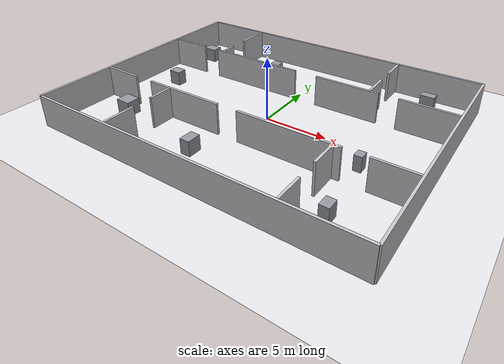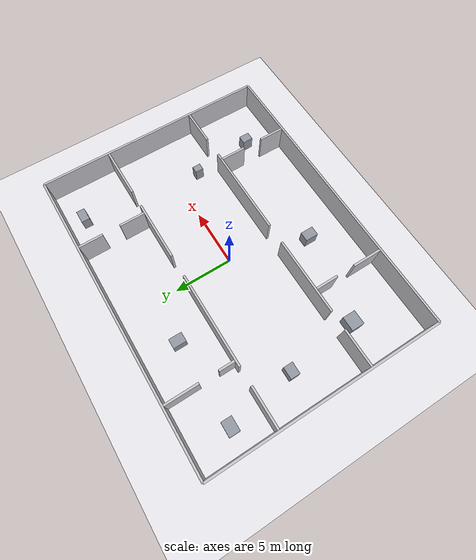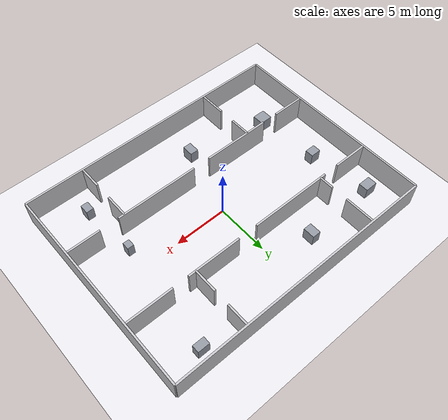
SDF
<?xml version="1.0"?>
<sdf version="1.9"><world name="new_room_world">
<plugin filename="gz-sim-physics-system" name="gz::sim::systems::Physics"/><plugin filename="gz-sim-user-commands-system" name="gz::sim::systems::UserCommands"/><plugin filename="gz-sim-scene-broadcaster-system" name="gz::sim::systems::SceneBroadcaster"/><plugin filename="gz-sim-sensors-system" name="gz::sim::systems::Sensors"><render_engine>ogre2</render_engine></plugin><plugin filename="gz-sim-imu-system" name="gz::sim::systems::Imu"/>
<physics name="new_room_realtime" type="ignored"><max_step_size>0.001</max_step_size><real_time_factor>1</real_time_factor></physics><gravity>0 0 -9.8</gravity><scene><ambient>0.85 0.85 0.87 1</ambient><background>0.68 0.68 0.71 1</background><shadows>false</shadows></scene><light name="sun" type="directional"><cast_shadows>false</cast_shadows><pose>0 0 10 0 0 0</pose><diffuse>0.95 0.95 0.95 1</diffuse><direction>-0.3 0.2 -1</direction></light>
<model name="new_room_ground"><static>true</static><link name="ground_link"><collision name="ground_collision"><geometry><plane><normal>0 0 1</normal><size>40 32</size></plane></geometry></collision><visual name="ground_visual"><geometry><plane><normal>0 0 1</normal><size>40 32</size></plane></geometry><material><ambient>0.92 0.92 0.94 1</ambient><diffuse>0.92 0.92 0.94 1</diffuse></material></visual></link></model>
<model name="mini_hospital_structure"><static>true</static><link name="structure">
<collision name="mx048_c000"><pose>0 10 1.25 0 0 0</pose><geometry><box><size>26 0.18 2.5</size></box></geometry></collision><visual name="mx048_v000"><pose>0 10 1.25 0 0 0</pose><geometry><box><size>26 0.18 2.5</size></box></geometry><material><ambient>0.78 0.78 0.80 1</ambient><diffuse>0.78 0.78 0.80 1</diffuse></material></visual>
<collision name="mx048_c001"><pose>0 -10 1.25 0 0 0</pose><geometry><box><size>26 0.18 2.5</size></box></geometry></collision><visual name="mx048_v001"><pose>0 -10 1.25 0 0 0</pose><geometry><box><size>26 0.18 2.5</size></box></geometry><material><ambient>0.78 0.78 0.80 1</ambient><diffuse>0.78 0.78 0.80 1</diffuse></material></visual>
<collision name="mx048_c002"><pose>-13 0 1.25 0 0 0</pose><geometry><box><size>0.18 20 2.5</size></box></geometry></collision><visual name="mx048_v002"><pose>-13 0 1.25 0 0 0</pose><geometry><box><size>0.18 20 2.5</size></box></geometry><material><ambient>0.78 0.78 0.80 1</ambient><diffuse>0.78 0.78 0.80 1</diffuse></material></visual>
<collision name="mx048_c003"><pose>13 0 1.25 0 0 0</pose><geometry><box><size>0.18 20 2.5</size></box></geometry></collision><visual name="mx048_v003"><pose>13 0 1.25 0 0 0</pose><geometry><box><size>0.18 20 2.5</size></box></geometry><material><ambient>0.78 0.78 0.80 1</ambient><diffuse>0.78 0.78 0.80 1</diffuse></material></visual>
<collision name="mx048_c004"><pose>-11.23 4.1 1.25 0 0 0</pose><geometry><box><size>3.36 0.18 2.5</size></box></geometry></collision><visual name="mx048_v004"><pose>-11.23 4.1 1.25 0 0 0</pose><geometry><box><size>3.36 0.18 2.5</size></box></geometry><material><ambient>0.78 0.78 0.80 1</ambient><diffuse>0.78 0.78 0.80 1</diffuse></material></visual>
<collision name="mx048_c005"><pose>-4.05 4.1 1.25 0 0 0</pose><geometry><box><size>8 0.18 2.5</size></box></geometry></collision><visual name="mx048_v005"><pose>-4.05 4.1 1.25 0 0 0</pose><geometry><box><size>8 0.18 2.5</size></box></geometry><material><ambient>0.78 0.78 0.80 1</ambient><diffuse>0.78 0.78 0.80 1</diffuse></material></visual>
<collision name="mx048_c006"><pose>4.45 4.1 1.25 0 0 0</pose><geometry><box><size>5.2 0.18 2.5</size></box></geometry></collision><visual name="mx048_v006"><pose>4.45 4.1 1.25 0 0 0</pose><geometry><box><size>5.2 0.18 2.5</size></box></geometry><material><ambient>0.78 0.78 0.80 1</ambient><diffuse>0.78 0.78 0.80 1</diffuse></material></visual>
<collision name="mx048_c007"><pose>10.73 4.1 1.25 0 0 0</pose><geometry><box><size>4.36 0.18 2.5</size></box></geometry></collision><visual name="mx048_v007"><pose>10.73 4.1 1.25 0 0 0</pose><geometry><box><size>4.36 0.18 2.5</size></box></geometry><material><ambient>0.78 0.78 0.80 1</ambient><diffuse>0.78 0.78 0.80 1</diffuse></material></visual>
<collision name="mx048_c008"><pose>-11.355 -3.8 1.25 0 0 0</pose><geometry><box><size>3.11 0.18 2.5</size></box></geometry></collision><visual name="mx048_v008"><pose>-11.355 -3.8 1.25 0 0 0</pose><geometry><box><size>3.11 0.18 2.5</size></box></geometry><material><ambient>0.78 0.78 0.80 1</ambient><diffuse>0.78 0.78 0.80 1</diffuse></material></visual>
<collision name="mx048_c009"><pose>-4.925 -3.8 1.25 0 0 0</pose><geometry><box><size>6.55 0.18 2.5</size></box></geometry></collision><visual name="mx048_v009"><pose>-4.925 -3.8 1.25 0 0 0</pose><geometry><box><size>6.55 0.18 2.5</size></box></geometry><material><ambient>0.78 0.78 0.80 1</ambient><diffuse>0.78 0.78 0.80 1</diffuse></material></visual>
<collision name="mx048_c010"><pose>4.025 -3.8 1.25 0 0 0</pose><geometry><box><size>7.95 0.18 2.5</size></box></geometry></collision><visual name="mx048_v010"><pose>4.025 -3.8 1.25 0 0 0</pose><geometry><box><size>7.95 0.18 2.5</size></box></geometry><material><ambient>0.78 0.78 0.80 1</ambient><diffuse>0.78 0.78 0.80 1</diffuse></material></visual>
<collision name="mx048_c011"><pose>11.355 -3.8 1.25 0 0 0</pose><geometry><box><size>3.11 0.18 2.5</size></box></geometry></collision><visual name="mx048_v011"><pose>11.355 -3.8 1.25 0 0 0</pose><geometry><box><size>3.11 0.18 2.5</size></box></geometry><material><ambient>0.78 0.78 0.80 1</ambient><diffuse>0.78 0.78 0.80 1</diffuse></material></visual>
<collision name="mx048_c012"><pose>-7.5 4.8 1.25 0 0 0</pose><geometry><box><size>0.18 1.4 2.5</size></box></geometry></collision><visual name="mx048_v012"><pose>-7.5 4.8 1.25 0 0 0</pose><geometry><box><size>0.18 1.4 2.5</size></box></geometry><material><ambient>0.78 0.78 0.80 1</ambient><diffuse>0.78 0.78 0.80 1</diffuse></material></visual>
<collision name="mx048_c013"><pose>-7.5 8.505 1.25 0 0 0</pose><geometry><box><size>0.18 2.81 2.5</size></box></geometry></collision><visual name="mx048_v013"><pose>-7.5 8.505 1.25 0 0 0</pose><geometry><box><size>0.18 2.81 2.5</size></box></geometry><material><ambient>0.78 0.78 0.80 1</ambient><diffuse>0.78 0.78 0.80 1</diffuse></material></visual>
<collision name="mx048_c014"><pose>6.3 5.225 1.25 0 0 0</pose><geometry><box><size>0.18 2.25 2.5</size></box></geometry></collision><visual name="mx048_v014"><pose>6.3 5.225 1.25 0 0 0</pose><geometry><box><size>0.18 2.25 2.5</size></box></geometry><material><ambient>0.78 0.78 0.80 1</ambient><diffuse>0.78 0.78 0.80 1</diffuse></material></visual>
<collision name="mx048_c015"><pose>6.3 8.88 1.25 0 0 0</pose><geometry><box><size>0.18 2.06 2.5</size></box></geometry></collision><visual name="mx048_v015"><pose>6.3 8.88 1.25 0 0 0</pose><geometry><box><size>0.18 2.06 2.5</size></box></geometry><material><ambient>0.78 0.78 0.80 1</ambient><diffuse>0.78 0.78 0.80 1</diffuse></material></visual>
<collision name="mx048_c016"><pose>-6.2 -8.655 1.25 0 0 0</pose><geometry><box><size>0.18 2.51 2.5</size></box></geometry></collision><visual name="mx048_v016"><pose>-6.2 -8.655 1.25 0 0 0</pose><geometry><box><size>0.18 2.51 2.5</size></box></geometry><material><ambient>0.78 0.78 0.80 1</ambient><diffuse>0.78 0.78 0.80 1</diffuse></material></visual>
<collision name="mx048_c017"><pose>-6.2 -4.8 1.25 0 0 0</pose><geometry><box><size>0.18 2 2.5</size></box></geometry></collision><visual name="mx048_v017"><pose>-6.2 -4.8 1.25 0 0 0</pose><geometry><box><size>0.18 2 2.5</size></box></geometry><material><ambient>0.78 0.78 0.80 1</ambient><diffuse>0.78 0.78 0.80 1</diffuse></material></visual>
<collision name="mx048_c018"><pose>7.4 -8.83 1.25 0 0 0</pose><geometry><box><size>0.18 2.16 2.5</size></box></geometry></collision><visual name="mx048_v018"><pose>7.4 -8.83 1.25 0 0 0</pose><geometry><box><size>0.18 2.16 2.5</size></box></geometry><material><ambient>0.78 0.78 0.80 1</ambient><diffuse>0.78 0.78 0.80 1</diffuse></material></visual>
<collision name="mx048_c019"><pose>7.4 -4.925 1.25 0 0 0</pose><geometry><box><size>0.18 2.25 2.5</size></box></geometry></collision><visual name="mx048_v019"><pose>7.4 -4.925 1.25 0 0 0</pose><geometry><box><size>0.18 2.25 2.5</size></box></geometry><material><ambient>0.78 0.78 0.80 1</ambient><diffuse>0.78 0.78 0.80 1</diffuse></material></visual>
<collision name="mx048_c020"><pose>-11 6.7 0.6 0 0 0</pose><geometry><box><size>1.2 0.9 1.2</size></box></geometry></collision><visual name="mx048_v020"><pose>-11 6.7 0.6 0 0 0</pose><geometry><box><size>1.2 0.9 1.2</size></box></geometry><material><ambient>0.58 0.60 0.64 1</ambient><diffuse>0.58 0.60 0.64 1</diffuse></material></visual>
<collision name="mx048_c021"><pose>-3.8 6.9 0.6 0 0 0</pose><geometry><box><size>0.8 1.1 1.2</size></box></geometry></collision><visual name="mx048_v021"><pose>-3.8 6.9 0.6 0 0 0</pose><geometry><box><size>0.8 1.1 1.2</size></box></geometry><material><ambient>0.58 0.60 0.64 1</ambient><diffuse>0.58 0.60 0.64 1</diffuse></material></visual>
<collision name="mx048_c022"><pose>9.5 8.5 0.6 0 0 0</pose><geometry><box><size>1.1 0.7 1.2</size></box></geometry></collision><visual name="mx048_v022"><pose>9.5 8.5 0.6 0 0 0</pose><geometry><box><size>1.1 0.7 1.2</size></box></geometry><material><ambient>0.58 0.60 0.64 1</ambient><diffuse>0.58 0.60 0.64 1</diffuse></material></visual>
<collision name="mx048_c023"><pose>-9.5 -5.2 0.6 0 0 0</pose><geometry><box><size>1.2 1.1 1.2</size></box></geometry></collision><visual name="mx048_v023"><pose>-9.5 -5.2 0.6 0 0 0</pose><geometry><box><size>1.2 1.1 1.2</size></box></geometry><material><ambient>0.58 0.60 0.64 1</ambient><diffuse>0.58 0.60 0.64 1</diffuse></material></visual>
<collision name="mx048_c024"><pose>-1.8 -6.6 0.6 0 0 0</pose><geometry><box><size>0.8 1.1 1.2</size></box></geometry></collision><visual name="mx048_v024"><pose>-1.8 -6.6 0.6 0 0 0</pose><geometry><box><size>0.8 1.1 1.2</size></box></geometry><material><ambient>0.58 0.60 0.64 1</ambient><diffuse>0.58 0.60 0.64 1</diffuse></material></visual>
<collision name="mx048_c025"><pose>9 -7.3 0.6 0 0 0</pose><geometry><box><size>0.7 0.9 1.2</size></box></geometry></collision><visual name="mx048_v025"><pose>9 -7.3 0.6 0 0 0</pose><geometry><box><size>0.7 0.9 1.2</size></box></geometry><material><ambient>0.58 0.60 0.64 1</ambient><diffuse>0.58 0.60 0.64 1</diffuse></material></visual>
<collision name="mx048_c026"><pose>-10.1 0.9 0.6 0 0 0</pose><geometry><box><size>1 0.8 1.2</size></box></geometry></collision><visual name="mx048_v026"><pose>-10.1 0.9 0.6 0 0 0</pose><geometry><box><size>1 0.8 1.2</size></box></geometry><material><ambient>0.58 0.60 0.64 1</ambient><diffuse>0.58 0.60 0.64 1</diffuse></material></visual>
<collision name="mx048_c027"><pose>8.5 -2 0.6 0 0 0</pose><geometry><box><size>0.6 0.7 1.2</size></box></geometry></collision><visual name="mx048_v027"><pose>8.5 -2 0.6 0 0 0</pose><geometry><box><size>0.6 0.7 1.2</size></box></geometry><material><ambient>0.58 0.60 0.64 1</ambient><diffuse>0.58 0.60 0.64 1</diffuse></material></visual>
</link></model></world></sdf>
